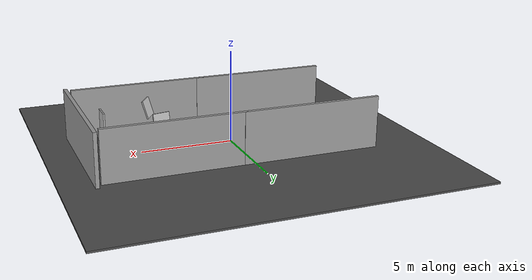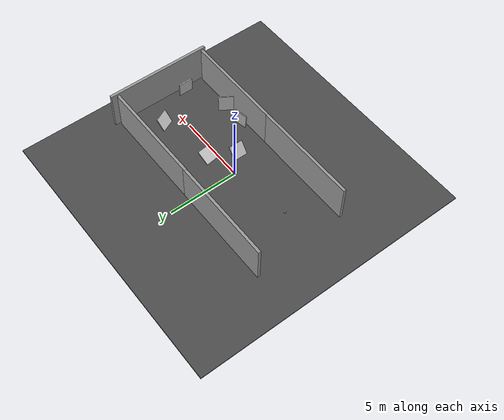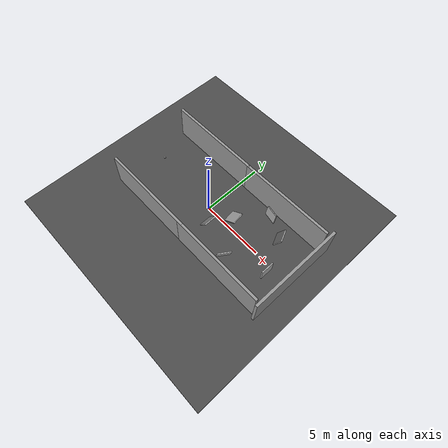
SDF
<sdf version="1.6">
 <world name="default">
  <light name="sun" type="directional">
   <pose>0 0 10 0 -0 0</pose>
   <diffuse>0.8 0.8 0.8 1</diffuse>
   <specular>0.1 0.1 0.1 1</specular>
   <attenuation>
    <range>1000</range>
    <constant>0.9</constant>
    <linear>0.01</linear>
    <quadratic>0.001</quadratic>
   </attenuation>
   <direction>-0.5 0.5 -1</direction>
  </light>
  <gravity>0 0 -9.8</gravity>
  <magnetic_field>6e-06 2.3e-05 -4.2e-05</magnetic_field>
  <atmosphere type="adiabatic"/>
  <physics name="default_physics" default="0" type="ode">
   <max_step_size>0.001</max_step_size>
   <real_time_factor>1</real_time_factor>
   <real_time_update_rate>1000</real_time_update_rate>
  </physics>
  <scene><ambient>0.4 0.4 0.4 1</ambient><background>0.7 0.7 0.7 1</background><shadows>1</shadows></scene>
  <spherical_coordinates>
   <surface_model>EARTH_WGS84</surface_model>
   <latitude_deg>0</latitude_deg>
   <longitude_deg>0</longitude_deg>
   <elevation>0</elevation>
   <heading_deg>0</heading_deg>
  </spherical_coordinates>
  <model name="asphalt_plane">
   <static>1</static>
   <link name="link">
    <collision name="collision"><geometry><box><size>20 20 0.1</size></box></geometry></collision>
    <visual name="visual">
     <cast_shadows>0</cast_shadows>
     <geometry><box><size>20 20 0.1</size></box></geometry>
     <material>
      <script>
       <uri>model://asphalt_plane/materials/scripts</uri>
       <uri>model://asphalt_plane/materials/textures</uri>
       <name>vrc/asphalt</name>
      </script>
     </material>
    </visual>
   </link>
   <pose>0 0 -0.05 0 -0 0</pose>
  </model>
  <model name="bumblebee_xb3">
   <pose>-5 0 1.5 0 -0 0</pose>
   <static>1</static>
   <link name="link">
    <inertial>
     <mass>0.1</mass>
     <inertia>
      <ixx>0.000166667</ixx>
      <iyy>0.000166667</iyy>
      <izz>0.000166667</izz>
      <ixy>0</ixy>
      <ixz>0</ixz>
      <iyz>0</iyz>
     </inertia>
    </inertial>
    <visual name="visual"><geometry><box><size>0.1 0.1 0.1</size></box></geometry></visual>
    <sensor name="stereo_camera" type="multicamera">
     <visualize>1</visualize>
     <update_rate>10</update_rate>
     <camera name="left">
      <horizontal_fov>0.750492</horizontal_fov>
      <image><width>1280</width><height>960</height><format>R8G8B8</format></image>
      <clip><near>0.02</near><far>300</far></clip>
      <noise><type>gaussian</type><mean>0</mean><stddev>0.007</stddev></noise>
     </camera>
     <camera name="right">
      <pose>0 -0.12 0 0 -0 0</pose>
      <horizontal_fov>0.750492</horizontal_fov>
      <image><width>1280</width><height>960</height><format>R8G8B8</format></image>
      <clip><near>0.02</near><far>300</far></clip>
      <noise><type>gaussian</type><mean>0</mean><stddev>0.007</stddev></noise>
     </camera>
     <plugin name="stereo_camera_controller" filename="libgazebo_ros_multicamera.so">
      <alwaysOn>true</alwaysOn>
      <updateRate>0.0</updateRate>
      <cameraName>stereo_camera/</cameraName>
      <imageTopicName>image_rect_color</imageTopicName>
      <cameraInfoTopicName>camera_info</cameraInfoTopicName>
      <frameName>stereo_camera</frameName>
      <hackBaseline>0.12</hackBaseline>
      <distortionK1>0.0</distortionK1>
      <distortionK2>0.0</distortionK2>
      <distortionK3>0.0</distortionK3>
      <distortionT1>0.0</distortionT1>
      <distortionT2>0.0</distortionT2>
     </plugin>
    </sensor>
   </link>
  </model>
  <model name="Checkerboard">
   <pose>5.58557 1.60631 1.2 0.5 -0 2</pose>
   <static>1</static>
   <link name="body">
    <visual name="visual">
     <geometry><mesh><uri>model://chess_plane/meshes/chess_plane.dae</uri><scale>1 1 1</scale></mesh></geometry>
    </visual>
    <collision name="collision">
     <geometry><mesh><uri>model://chess_plane/meshes/chess_plane.stl</uri><scale>1 1 1</scale></mesh></geometry>
    </collision>
   </link>
  </model>
  <model name="grey_wall">
   <static>1</static>
   <link name="link">
    <pose>0 0 1.4 0 -0 0</pose>
    <collision name="collision"><geometry><box><size>7.5 0.2 2.8</size></box></geometry></collision>
    <visual name="visual">
     <cast_shadows>0</cast_shadows>
     <geometry><box><size>7.5 0.2 2.8</size></box></geometry>
     <material>
      <script>
       <uri>model://grey_wall/materials/scripts</uri>
       <uri>model://grey_wall/materials/textures</uri>
       <name>vrc/grey_wall</name>
      </script>
     </material>
    </visual>
   </link>
   <pose>4.19935 3.46084 0 0 -0 0</pose>
  </model>
  <model name="grey_wall_0">
   <static>1</static>
   <link name="link">
    <pose>0 0 1.4 0 -0 0</pose>
    <collision name="collision"><geometry><box><size>7.5 0.2 2.8</size></box></geometry></collision>
    <visual name="visual">
     <cast_shadows>0</cast_shadows>
     <geometry><box><size>7.5 0.2 2.8</size></box></geometry>
     <material>
      <script>
       <uri>model://grey_wall/materials/scripts</uri>
       <uri>model://grey_wall/materials/textures</uri>
       <name>vrc/grey_wall</name>
      </script>
     </material>
    </visual>
   </link>
   <pose>4.20967 -3.25936 0 0 -0 0</pose>
  </model>
  <model name="grey_wall_1">
   <static>1</static>
   <link name="link">
    <pose>0 0 1.4 0 -0 0</pose>
    <collision name="collision"><geometry><box><size>7.5 0.2 2.8</size></box></geometry></collision>
    <visual name="visual">
     <cast_shadows>0</cast_shadows>
     <geometry><box><size>7.5 0.2 2.8</size></box></geometry>
     <material>
      <script>
       <uri>model://grey_wall/materials/scripts</uri>
       <uri>model://grey_wall/materials/textures</uri>
       <name>vrc/grey_wall</name>
      </script>
     </material>
    </visual>
   </link>
   <pose>8.19347 0.155513 0 0 -0 1.57</pose>
  </model>
  <model name="Checkerboard_clone">
   <pose>4 -2.3 1.66027 0.3 -0 1</pose>
   <static>1</static>
   <link name="body">
    <visual name="visual">
     <geometry><mesh><uri>model://chess_plane/meshes/chess_plane.dae</uri><scale>1 1 1</scale></mesh></geometry>
    </visual>
    <collision name="collision">
     <geometry><mesh><uri>model://chess_plane/meshes/chess_plane.stl</uri><scale>1 1 1</scale></mesh></geometry>
    </collision>
   </link>
  </model>
  <model name="Checkerboard_clone_0">
   <pose>6.79969 -1.01674 1.66027 0 -0 1.57</pose>
   <static>1</static>
   <link name="body">
    <visual name="visual">
     <geometry><mesh><uri>model://chess_plane/meshes/chess_plane.dae</uri><scale>1 1 1</scale></mesh></geometry>
    </visual>
    <collision name="collision">
     <geometry><mesh><uri>model://chess_plane/meshes/chess_plane.stl</uri><scale>1 1 1</scale></mesh></geometry>
    </collision>
   </link>
  </model>
  <model name="Checkerboard_clone_1">
   <pose>3.09392 -2.8 0.6 0.1 -0 0.2</pose>
   <static>1</static>
   <link name="body">
    <visual name="visual">
     <geometry><mesh><uri>model://chess_plane/meshes/chess_plane.dae</uri><scale>1 1 1</scale></mesh></geometry>
    </visual>
    <collision name="collision">
     <geometry><mesh><uri>model://chess_plane/meshes/chess_plane.stl</uri><scale>1 1 1</scale></mesh></geometry>
    </collision>
   </link>
  </model>
  <model name="Checkerboard_clone_2">
   <pose>1 -1 0.66027 0.6 -1e-06 1.57</pose>
   <static>1</static>
   <link name="body">
    <visual name="visual">
     <geometry><mesh><uri>model://chess_plane/meshes/chess_plane.dae</uri><scale>1 1 1</scale></mesh></geometry>
    </visual>
    <collision name="collision">
     <geometry><mesh><uri>model://chess_plane/meshes/chess_plane.stl</uri><scale>1 1 1</scale></mesh></geometry>
    </collision>
   </link>
  </model>
  <model name="Checkerboard_clone_clone">
   <pose>3.75462 2.80086 0.6 -0.099999 1e-06 -0.200001</pose>
   <static>1</static>
   <link name="body">
    <visual name="visual">
     <geometry><mesh><uri>model://chess_plane/meshes/chess_plane.dae</uri><scale>1 1 1</scale></mesh></geometry>
    </visual>
    <collision name="collision">
     <geometry><mesh><uri>model://chess_plane/meshes/chess_plane.stl</uri><scale>1 1 1</scale></mesh></geometry>
    </collision>
   </link>
  </model>
  <model name="grey_wall_0_clone">
   <static>1</static>
   <link name="link">
    <pose>0 0 1.4 0 -0 0</pose>
    <collision name="collision"><geometry><box><size>7.5 0.2 2.8</size></box></geometry></collision>
    <visual name="visual">
     <cast_shadows>0</cast_shadows>
     <geometry><box><size>7.5 0.2 2.8</size></box></geometry>
     <material>
      <script>
       <uri>model://grey_wall/materials/scripts</uri>
       <uri>model://grey_wall/materials/textures</uri>
       <name>vrc/grey_wall</name>
      </script>
     </material>
    </visual>
   </link>
   <pose>-2.87192 -3.2503 0 0 -0 0</pose>
  </model>
  <model name="grey_wall_0_clone_clone">
   <static>1</static>
   <link name="link">
    <pose>0 0 1.4 0 -0 0</pose>
    <collision name="collision"><geometry><box><size>7.5 0.2 2.8</size></box></geometry></collision>
    <visual name="visual">
     <cast_shadows>0</cast_shadows>
     <geometry><box><size>7.5 0.2 2.8</size></box></geometry>
     <material>
      <script>
       <uri>model://grey_wall/materials/scripts</uri>
       <uri>model://grey_wall/materials/textures</uri>
       <name>vrc/grey_wall</name>
      </script>
     </material>
    </visual>
   </link>
   <pose>-3.1446 3.4711 0 0 -0 0</pose>
  </model>
  <model name="Checkerboard_clone_2_clone">
   <pose>2 0.659939 0.5 1 -0 1.7</pose>
   <static>1</static>
   <link name="body">
    <visual name="visual">
     <geometry><mesh><uri>model://chess_plane/meshes/chess_plane.dae</uri><scale>1 1 1</scale></mesh></geometry>
    </visual>
    <collision name="collision">
     <geometry><mesh><uri>model://chess_plane/meshes/chess_plane.stl</uri><scale>1 1 1</scale></mesh></geometry>
    </collision>
   </link>
  </model>
  <light name="user_directional_light_0" type="directional">
   <pose>-1.48079 2.72276 1 0 -0 0</pose>
   <diffuse>0.5 0.5 0.5 1</diffuse>
   <specular>0.1 0.1 0.1 1</specular>
   <direction>0.1 0.1 -0.9</direction>
   <attenuation>
    <range>20</range>
    <constant>0.5</constant>
    <linear>0.01</linear>
    <quadratic>0.001</quadratic>
   </attenuation>
  </light>
  <light name="user_directional_light_0_clone" type="directional">
   <pose>-4.47412 1.22513 9 0 -0 0</pose>
   <diffuse>0.498039 0.498039 0.498039 1</diffuse>
   <specular>0.0980392 0.0980392 0.0980392 1</specular>
   <direction>0.109764 0.109764 -0.987878</direction>
   <attenuation>
    <range>20</range>
    <constant>0.5</constant>
    <linear>0.01</linear>
    <quadratic>0.001</quadratic>
   </attenuation>
  </light>
 </world>
</sdf>
